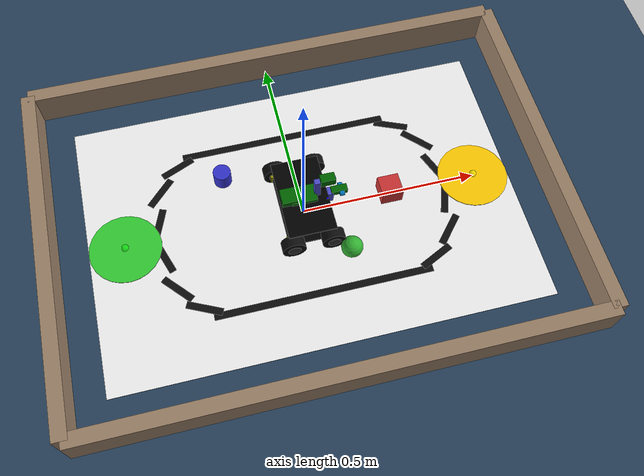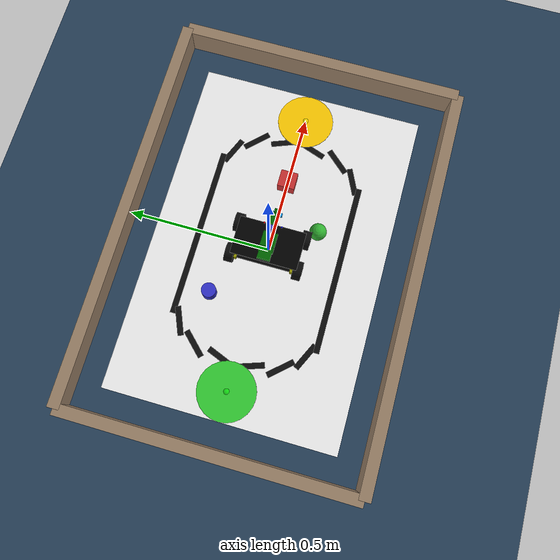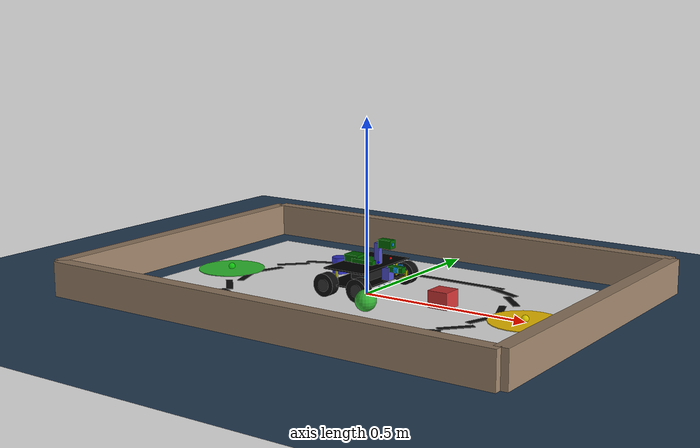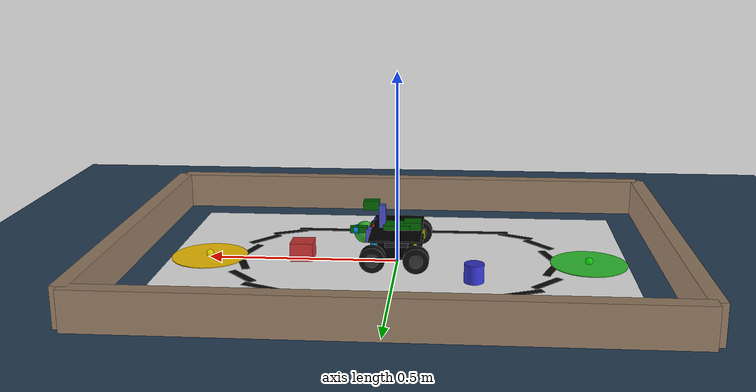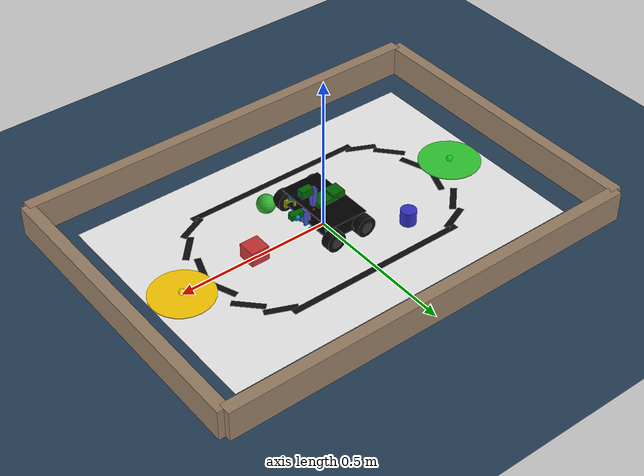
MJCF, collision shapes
<mujoco model="elegoo_smart_car_v4 scene">
  <include file="elegoo_car.xml"/>

  <statistic center="0 0 0.1" extent="0.8"/>

  <visual>
    <headlight diffuse="0.6 0.6 0.6" ambient="0.3 0.3 0.3" specular="0 0 0"/>
    <rgba haze="0.15 0.25 0.35 1"/>
    <global azimuth="120" elevation="-25"/>
  </visual>

  <asset>
    <texture type="skybox" builtin="gradient" rgb1="0.3 0.5 0.7" rgb2="0 0 0" width="512" height="3072"/>
    <texture type="2d" name="groundplane" builtin="checker" mark="edge" rgb1="0.2 0.3 0.4" rgb2="0.1 0.2 0.3"
      markrgb="0.8 0.8 0.8" width="300" height="300"/>
    <material name="groundplane" texture="groundplane" texuniform="true" texrepeat="10 10" reflectance="0.2"/>

    <!-- Line following track materials -->
    <material name="track_white" rgba="0.95 0.95 0.95 1"/>
    <material name="track_black" rgba="0.05 0.05 0.05 1"/>

    <!-- Obstacle materials -->
    <material name="obstacle_red" rgba="0.8 0.2 0.2 1"/>
    <material name="obstacle_blue" rgba="0.2 0.2 0.8 1"/>
    <material name="obstacle_green" rgba="0.2 0.7 0.2 1"/>
    <material name="wall_mat" rgba="0.6 0.5 0.4 1"/>
    <material name="target_mat" rgba="1.0 0.8 0.0 0.8"/>
  </asset>

  <worldbody>
    <light pos="0 0 2" dir="0 0 -1" directional="true" diffuse="0.8 0.8 0.8"/>
    <light pos="1 1 1.5" dir="-0.5 -0.5 -1" diffuse="0.3 0.3 0.3"/>

    <!-- Ground plane -->
    <geom name="floor" size="0 0 0.01" type="plane" material="groundplane"/>

    <!-- ================== LINE FOLLOWING TRACK ================== -->
    <!-- Simple oval track with black line on white background -->

    <!-- White track base -->
    <geom name="track_base" type="box" size="0.6 0.4 0.001" pos="0 0 0.001" material="track_white"/>

    <!-- Black line - straight sections -->
    <geom name="line_top" type="box" size="0.3 0.01 0.0015" pos="0 0.25 0.002" material="track_black"/>
    <geom name="line_bottom" type="box" size="0.3 0.01 0.0015" pos="0 -0.25 0.002" material="track_black"/>

    <!-- Black line - curved sections (approximated with segments) -->
    <!-- Left curve -->
    <geom name="curve_l1" type="box" size="0.05 0.01 0.0015" pos="-0.32 0.22 0.002" euler="0 0 0.4" material="track_black"/>
    <geom name="curve_l2" type="box" size="0.05 0.01 0.0015" pos="-0.38 0.15 0.002" euler="0 0 0.8" material="track_black"/>
    <geom name="curve_l3" type="box" size="0.05 0.01 0.0015" pos="-0.40 0.05 0.002" euler="0 0 1.2" material="track_black"/>
    <geom name="curve_l4" type="box" size="0.05 0.01 0.0015" pos="-0.40 -0.05 0.002" euler="0 0 1.9" material="track_black"/>
    <geom name="curve_l5" type="box" size="0.05 0.01 0.0015" pos="-0.38 -0.15 0.002" euler="0 0 2.3" material="track_black"/>
    <geom name="curve_l6" type="box" size="0.05 0.01 0.0015" pos="-0.32 -0.22 0.002" euler="0 0 2.7" material="track_black"/>

    <!-- Right curve -->
    <geom name="curve_r1" type="box" size="0.05 0.01 0.0015" pos="0.32 0.22 0.002" euler="0 0 -0.4" material="track_black"/>
    <geom name="curve_r2" type="box" size="0.05 0.01 0.0015" pos="0.38 0.15 0.002" euler="0 0 -0.8" material="track_black"/>
    <geom name="curve_r3" type="box" size="0.05 0.01 0.0015" pos="0.40 0.05 0.002" euler="0 0 -1.2" material="track_black"/>
    <geom name="curve_r4" type="box" size="0.05 0.01 0.0015" pos="0.40 -0.05 0.002" euler="0 0 -1.9" material="track_black"/>
    <geom name="curve_r5" type="box" size="0.05 0.01 0.0015" pos="0.38 -0.15 0.002" euler="0 0 -2.3" material="track_black"/>
    <geom name="curve_r6" type="box" size="0.05 0.01 0.0015" pos="0.32 -0.22 0.002" euler="0 0 -2.7" material="track_black"/>

    <!-- ================== OBSTACLES ================== -->
    <!-- Movable obstacles for obstacle avoidance testing -->

    <body name="obstacle_1" pos="0.25 0 0.025">
      <joint type="free"/>
      <geom name="obs1_geom" type="box" size="0.03 0.03 0.025" material="obstacle_red" mass="0.1"/>
    </body>

    <body name="obstacle_2" pos="-0.2 0.15 0.025">
      <joint type="free"/>
      <geom name="obs2_geom" type="cylinder" size="0.025 0.025" material="obstacle_blue" mass="0.1"/>
    </body>

    <body name="obstacle_3" pos="0.1 -0.15 0.03">
      <joint type="free"/>
      <geom name="obs3_geom" type="sphere" size="0.03" material="obstacle_green" mass="0.08"/>
    </body>

    <!-- ================== ARENA WALLS ================== -->
    <!-- Optional walls to keep car contained -->

    <geom name="wall_north" type="box" size="0.7 0.02 0.05" pos="0 0.5 0.05" material="wall_mat"/>
    <geom name="wall_south" type="box" size="0.7 0.02 0.05" pos="0 -0.5 0.05" material="wall_mat"/>
    <geom name="wall_east" type="box" size="0.02 0.5 0.05" pos="0.7 0 0.05" material="wall_mat"/>
    <geom name="wall_west" type="box" size="0.02 0.5 0.05" pos="-0.7 0 0.05" material="wall_mat"/>

    <!-- ================== TARGET ZONES ================== -->
    <!-- Goal areas for navigation tasks -->

    <geom name="target_zone" type="cylinder" size="0.1 0.002" pos="0.5 0 0.002" material="target_mat"/>
    <site name="target_site" pos="0.5 0 0.01" size="0.01" rgba="1 1 0 0.5"/>

    <!-- Start zone -->
    <geom name="start_zone" type="cylinder" size="0.1 0.002" pos="-0.5 0 0.002" material="obstacle_green" rgba="0.2 0.8 0.2 0.5"/>
    <site name="start_site" pos="-0.5 0 0.01" size="0.01" rgba="0 1 0 0.5"/>
  </worldbody>

  <!-- External cameras for monitoring -->
  <worldbody>
    <camera name="top_view" pos="0 0 1.5" xyaxes="1 0 0 0 1 0" fovy="60"/>
    <camera name="side_view" pos="1 0 0.3" xyaxes="0 -1 0 0 0 1" fovy="60"/>
    <camera name="corner_view" pos="0.8 0.8 0.5" xyaxes="-0.707 0.707 0 0 0 1" fovy="60"/>
  </worldbody>
</mujoco>

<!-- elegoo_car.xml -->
<mujoco model="elegoo_smart_car_v4">
  <!-- ELEGOO Smart Robot Car Kit V4.0 MuJoCo Model -->
  <!-- 4-wheel differential drive with ultrasonic sensor and front camera -->
  <!-- Chassis alignment derived from the ELEGOO STEP snapshot + exported STL plates -->

  <compiler angle="radian" meshdir="assets/elegoo/"/>

  <option timestep="0.002" integrator="implicit" cone="elliptic" impratio="10">
    <flag warmstart="enable"/>
  </option>

  <asset>
    <!-- Materials -->
    <material name="chassis_mat" rgba="0.1 0.1 0.1 1.0" specular="0.3" shininess="0.3"/>
    <material name="wheel_mat" rgba="0.2 0.2 0.2 1.0" specular="0.1" shininess="0.1"/>
    <material name="tire_mat" rgba="0.05 0.05 0.05 1.0" specular="0.0" shininess="0.0"/>
    <material name="motor_mat" rgba="0.6 0.6 0.0 1.0" specular="0.2" shininess="0.2"/>
    <material name="sensor_mat" rgba="0.0 0.5 0.8 1.0" specular="0.4" shininess="0.4"/>
    <material name="servo_mat" rgba="0.3 0.3 0.8 1.0" specular="0.2" shininess="0.2"/>
    <material name="pcb_mat" rgba="0.0 0.4 0.0 1.0" specular="0.1" shininess="0.1"/>
    <material name="led_red" rgba="1.0 0.0 0.0 1.0" emission="0.5"/>
    <material name="led_blue" rgba="0.0 0.0 1.0 1.0" emission="0.5"/>

    <!-- Actual ELEGOO CAD meshes (scaled from mm to m) -->
    <!-- Note: STL origin is offset, position adjusted in geom -->
    <mesh name="bottom_plate" file="Bottom Plate.stl" scale="0.001 0.001 0.001"/>
    <mesh name="top_plate" file="Top Plate.stl" scale="0.001 0.001 0.001"/>
    <mesh name="dead_plate" file="Dead Plate.stl" scale="0.001 0.001 0.001"/>

    <!-- Acrylic plate material -->
    <material name="acrylic_black" rgba="0.05 0.05 0.05 0.9" specular="0.5" shininess="0.8"/>
  </asset>

  <default>
    <default class="elegoo_car">
      <!-- Wheel joints - continuous rotation -->
      <joint frictionloss="0.01" armature="0.001" damping="0.1"/>

      <default class="wheel_joint">
        <joint axis="0 1 0" limited="false" type="hinge"/>
      </default>

      <default class="servo_joint">
        <joint axis="0 0 1" range="-1.57 1.57" limited="true" damping="0.5"/>
      </default>

      <default class="visual">
        <geom contype="0" conaffinity="0" density="0" group="2"/>
      </default>

      <default class="collision">
        <geom group="3" friction="1.0 0.005 0.0001"/>
      </default>

      <default class="wheel_collision">
        <geom type="cylinder" friction="2.0 0.1 0.01" solimp="0.95 0.99 0.001" solref="0.005 1"/>
      </default>
    </default>
  </default>

  <worldbody>
    <!-- Main chassis body -->
    <body name="chassis" pos="0 0 0.045" childclass="elegoo_car">
      <inertial pos="0 0 0" mass="0.5" diaginertia="0.002 0.004 0.005"/>
      <freejoint name="chassis_free"/>

      <!-- Main chassis plate - ELEGOO CAD mesh -->
      <!-- STL offset: X~10mm, Y~-51mm, Z~-55mm - adjusted to center at origin -->
      <!-- Rotated 90deg around Z so Y becomes forward (matches STL orientation) -->
      <geom name="chassis_bottom_mesh" type="mesh" mesh="bottom_plate"
            pos="-0.01 0.051 0.056" euler="0 0 0"
            material="acrylic_black" class="visual"/>
      <!-- Simplified collision box for physics -->
      <geom name="chassis_bottom" type="box" size="0.066 0.115 0.002" pos="0 0 0"
            material="chassis_mat" class="collision" rgba="0 0 0 0"/>

      <!-- Upper deck - ELEGOO CAD mesh -->
      <geom name="chassis_top_mesh" type="mesh" mesh="top_plate"
            pos="-0.01 0.051 0.056" euler="0 0 0"
            material="acrylic_black" class="visual"/>
      <!-- Simplified collision box for physics -->
      <geom name="chassis_top" type="box" size="0.066 0.115 0.002" pos="0 0 0.044"
            material="chassis_mat" class="collision" rgba="0 0 0 0"/>

      <!-- Dead plate (small bracket) -->
      <geom name="dead_plate_mesh" type="mesh" mesh="dead_plate"
            pos="-0.01 0.051 0.056" euler="0 0 0"
            material="acrylic_black" class="visual"/>

      <!-- Standoffs connecting decks (adjusted for 133x231mm chassis) -->
      <geom name="standoff_fl" type="cylinder" size="0.004 0.022" pos="0.05 0.075 0.022" material="motor_mat"/>
      <geom name="standoff_fr" type="cylinder" size="0.004 0.022" pos="0.05 -0.075 0.022" material="motor_mat"/>
      <geom name="standoff_bl" type="cylinder" size="0.004 0.022" pos="-0.05 0.075 0.022" material="motor_mat"/>
      <geom name="standoff_br" type="cylinder" size="0.004 0.022" pos="-0.05 -0.075 0.022" material="motor_mat"/>

      <!-- Arduino UNO / Expansion Board (on top deck) -->
      <geom name="arduino_board" type="box" size="0.035 0.025 0.008" pos="0 0 0.05"
            material="pcb_mat" class="visual"/>

      <!-- TB6612 Motor Driver Board -->
      <geom name="motor_driver" type="box" size="0.022 0.022 0.012" pos="-0.04 0 0.054"
            material="pcb_mat" class="visual"/>

      <!-- Battery holder (4xAA or 18650 pack) -->
      <geom name="battery" type="box" size="0.03 0.035 0.015" pos="0 0 0.018"
            material="chassis_mat" class="visual"/>

      <!-- ================== MOTORS AND WHEELS ================== -->
      <!-- Adjusted for actual chassis: 133mm (X) x 231mm (Y) -->
      <!-- Wheels positioned at chassis corners with motor mounts -->

      <!-- Front Left Motor Mount + Wheel -->
      <body name="motor_fl" pos="0.055 0.09 0">
        <geom name="motor_fl_body" type="box" size="0.015 0.012 0.012" pos="0 0.015 0"
              material="motor_mat" class="visual"/>
        <body name="wheel_fl" pos="0 0.028 0">
          <inertial pos="0 0 0" mass="0.05" diaginertia="0.00002 0.00003 0.00002"/>
          <joint name="wheel_fl_joint" class="wheel_joint"/>
          <geom name="wheel_fl_geom" type="cylinder" size="0.0325 0.015"
                material="tire_mat" class="wheel_collision" euler="1.5708 0 0"/>
          <!-- Wheel hub detail -->
          <geom name="wheel_fl_hub" type="cylinder" size="0.018 0.016"
                material="wheel_mat" class="visual" euler="1.5708 0 0"/>
        </body>
      </body>

      <!-- Front Right Motor Mount + Wheel -->
      <body name="motor_fr" pos="0.055 -0.09 0">
        <geom name="motor_fr_body" type="box" size="0.015 0.012 0.012" pos="0 -0.015 0"
              material="motor_mat" class="visual"/>
        <body name="wheel_fr" pos="0 -0.028 0">
          <inertial pos="0 0 0" mass="0.05" diaginertia="0.00002 0.00003 0.00002"/>
          <joint name="wheel_fr_joint" class="wheel_joint"/>
          <geom name="wheel_fr_geom" type="cylinder" size="0.0325 0.015"
                material="tire_mat" class="wheel_collision" euler="1.5708 0 0"/>
          <geom name="wheel_fr_hub" type="cylinder" size="0.018 0.016"
                material="wheel_mat" class="visual" euler="1.5708 0 0"/>
        </body>
      </body>

      <!-- Rear Left Motor Mount + Wheel -->
      <body name="motor_bl" pos="-0.055 0.09 0">
        <geom name="motor_bl_body" type="box" size="0.015 0.012 0.012" pos="0 0.015 0"
              material="motor_mat" class="visual"/>
        <body name="wheel_bl" pos="0 0.028 0">
          <inertial pos="0 0 0" mass="0.05" diaginertia="0.00002 0.00003 0.00002"/>
          <joint name="wheel_bl_joint" class="wheel_joint"/>
          <geom name="wheel_bl_geom" type="cylinder" size="0.0325 0.015"
                material="tire_mat" class="wheel_collision" euler="1.5708 0 0"/>
          <geom name="wheel_bl_hub" type="cylinder" size="0.018 0.016"
                material="wheel_mat" class="visual" euler="1.5708 0 0"/>
        </body>
      </body>

      <!-- Rear Right Motor Mount + Wheel -->
      <body name="motor_br" pos="-0.055 -0.09 0">
        <geom name="motor_br_body" type="box" size="0.015 0.012 0.012" pos="0 -0.015 0"
              material="motor_mat" class="visual"/>
        <body name="wheel_br" pos="0 -0.028 0">
          <inertial pos="0 0 0" mass="0.05" diaginertia="0.00002 0.00003 0.00002"/>
          <joint name="wheel_br_joint" class="wheel_joint"/>
          <geom name="wheel_br_geom" type="cylinder" size="0.0325 0.015"
                material="tire_mat" class="wheel_collision" euler="1.5708 0 0"/>
          <geom name="wheel_br_hub" type="cylinder" size="0.018 0.016"
                material="wheel_mat" class="visual" euler="1.5708 0 0"/>
        </body>
      </body>

      <!-- ================== SENSORS ================== -->

      <!-- Ultrasonic Sensor Mount (Servo + HC-SR04) - at front of chassis -->
      <body name="servo_mount" pos="0.07 0 0.025">
        <geom name="servo_bracket" type="box" size="0.012 0.012 0.018" pos="0 0 0"
              material="servo_mat" class="visual"/>

        <body name="ultrasonic_head" pos="0.018 0 0.015">
          <inertial pos="0 0 0" mass="0.02" diaginertia="0.000001 0.000001 0.000001"/>
          <joint name="ultrasonic_pan" class="servo_joint"/>

          <!-- HC-SR04 Ultrasonic Sensor -->
          <geom name="ultrasonic_board" type="box" size="0.0225 0.01 0.008" pos="0.012 0 0"
                material="pcb_mat"/>
          <!-- Ultrasonic transducers (the "eyes") -->
          <geom name="ultrasonic_left" type="cylinder" size="0.008 0.006" pos="0.018 0.012 0"
                material="sensor_mat" euler="0 1.5708 0"/>
          <geom name="ultrasonic_right" type="cylinder" size="0.008 0.006" pos="0.018 -0.012 0"
                material="sensor_mat" euler="0 1.5708 0"/>

          <!-- Sensor site for raycast -->
          <site name="ultrasonic_site" pos="0.03 0 0" size="0.003" rgba="1 0 0 0.5"/>
        </body>
      </body>

      <!-- IR Line Tracking Sensors (3x on front bottom) -->
      <geom name="ir_sensor_left" type="box" size="0.006 0.004 0.003" pos="0.065 0.025 -0.012"
            material="sensor_mat"/>
      <geom name="ir_sensor_center" type="box" size="0.006 0.004 0.003" pos="0.065 0 -0.012"
            material="sensor_mat"/>
      <geom name="ir_sensor_right" type="box" size="0.006 0.004 0.003" pos="0.065 -0.025 -0.012"
            material="sensor_mat"/>

      <!-- IR sensor sites for line detection -->
      <site name="ir_left_site" pos="0.065 0.025 -0.015" size="0.002" rgba="1 0 0 0.5"/>
      <site name="ir_center_site" pos="0.065 0 -0.015" size="0.002" rgba="1 0 0 0.5"/>
      <site name="ir_right_site" pos="0.065 -0.025 -0.015" size="0.002" rgba="1 0 0 0.5"/>

      <!-- IR Obstacle Sensors (left and right sides) -->
      <geom name="ir_obstacle_left" type="box" size="0.008 0.003 0.006" pos="0.055 0.085 0.025"
            material="sensor_mat" euler="0 0 0.5"/>
      <geom name="ir_obstacle_right" type="box" size="0.008 0.003 0.006" pos="0.055 -0.085 0.025"
            material="sensor_mat" euler="0 0 -0.5"/>

      <!-- Status LEDs -->
      <geom name="led_power" type="sphere" size="0.003" pos="0.06 0.03 0.06" material="led_red"/>
      <geom name="led_status" type="sphere" size="0.003" pos="0.06 -0.03 0.06" material="led_blue"/>

      <!-- Camera module for the V4 camera variant -->
      <geom name="camera_mast" type="box" size="0.008 0.008 0.03" pos="0.038 0 0.078"
            material="servo_mat" class="visual"/>
      <geom name="camera_module" type="box" size="0.02 0.012 0.012" pos="0.066 0 0.108"
            material="pcb_mat" class="visual"/>
      <geom name="camera_lens" type="cylinder" size="0.005 0.006" pos="0.082 0 0.108"
            material="sensor_mat" class="visual" euler="0 1.5708 0"/>

      <!-- Camera for robot view -->
      <camera name="car_fpv" pos="0.082 0 0.108" xyaxes="0 -1 0 0 0 1" fovy="70"/>
      <camera name="car_top" pos="0 0 0.35" xyaxes="1 0 0 0 1 0" fovy="60"/>
      <camera name="car_rear" pos="-0.12 0 0.08" xyaxes="0 1 0 0 0 1" fovy="70"/>
    </body>
  </worldbody>

  <!-- ================== ACTUATORS ================== -->
  <!-- Differential drive: control left/right wheel velocities -->
  <actuator>
    <!-- Velocity control for wheels (simulating DC motors) -->
    <velocity name="motor_fl" joint="wheel_fl_joint" kv="0.5" forcerange="-1 1"/>
    <velocity name="motor_fr" joint="wheel_fr_joint" kv="0.5" forcerange="-1 1"/>
    <velocity name="motor_bl" joint="wheel_bl_joint" kv="0.5" forcerange="-1 1"/>
    <velocity name="motor_br" joint="wheel_br_joint" kv="0.5" forcerange="-1 1"/>

    <!-- Position control for ultrasonic servo -->
    <position name="ultrasonic_servo" joint="ultrasonic_pan" kp="5" ctrlrange="-1.57 1.57"/>
  </actuator>

  <!-- ================== SENSORS ================== -->
  <sensor>
    <!-- Wheel encoders (velocity sensing) -->
    <jointvel name="encoder_fl" joint="wheel_fl_joint"/>
    <jointvel name="encoder_fr" joint="wheel_fr_joint"/>
    <jointvel name="encoder_bl" joint="wheel_bl_joint"/>
    <jointvel name="encoder_br" joint="wheel_br_joint"/>

    <!-- IMU on chassis -->
    <accelerometer name="imu_accel" site="ultrasonic_site"/>
    <gyro name="imu_gyro" site="ultrasonic_site"/>

    <!-- Ultrasonic servo position -->
    <jointpos name="servo_pos" joint="ultrasonic_pan"/>
  </sensor>

  <!-- Contact exclusions -->
  <contact>
    <exclude body1="chassis" body2="motor_fl"/>
    <exclude body1="chassis" body2="motor_fr"/>
    <exclude body1="chassis" body2="motor_bl"/>
    <exclude body1="chassis" body2="motor_br"/>
    <exclude body1="chassis" body2="servo_mount"/>
  </contact>

  <!-- Keyframes for common poses -->
  <keyframe>
    <key name="home" qpos="0 0 0.045 1 0 0 0 0 0 0 0 0" ctrl="0 0 0 0 0"/>
    <key name="forward" ctrl="10 10 10 10 0"/>
    <key name="turn_left" ctrl="5 10 5 10 0"/>
    <key name="turn_right" ctrl="10 5 10 5 0"/>
    <key name="scan_left" ctrl="0 0 0 0 1.57"/>
    <key name="scan_right" ctrl="0 0 0 0 -1.57"/>
  </keyframe>
</mujoco>
